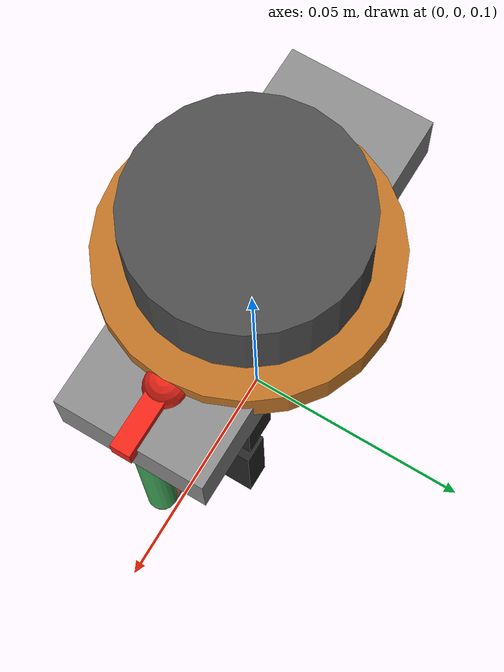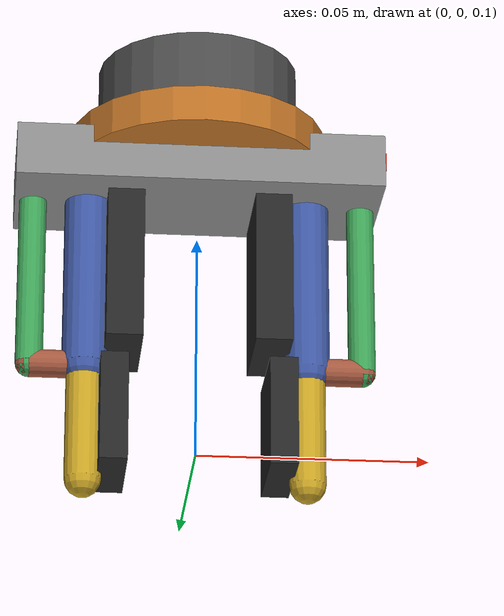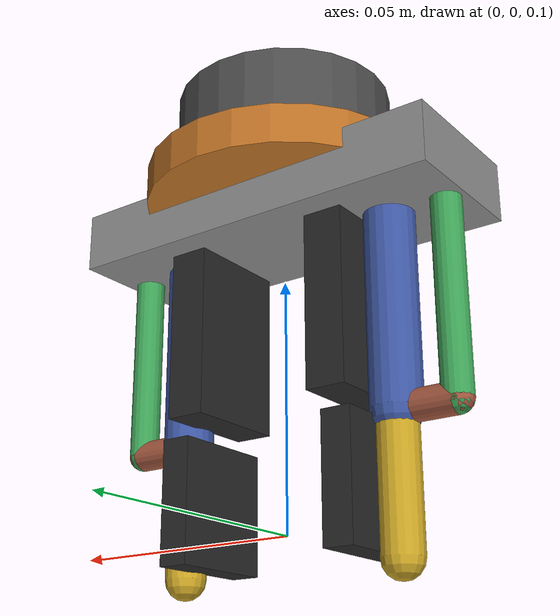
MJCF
<mujoco model="grasp_and_twist_gripper">

  <compiler angle="radian" autolimits="true"/>

  <default>
    <default class="gripper">
      <joint damping="0.5" armature="0.005"/>
      <geom condim="4" friction="0.7 0.005 0.001"/>

      <default class="driver">
        <joint damping="0.8" armature="0.008"/>
        <geom type="capsule" size="0.005" rgba="0.25 0.35 0.65 1"/>
      </default>
      <default class="follower">
        <joint damping="0.4" armature="0.004"/>
        <geom type="capsule" size="0.003" rgba="0.25 0.65 0.35 1"/>
      </default>
      <default class="coupler">
        <joint damping="0.3" armature="0.003"/>
        <geom type="capsule" size="0.003" rgba="0.65 0.35 0.25 1"/>
      </default>
      <default class="distal">
        <joint stiffness="0.6" damping="0.25" armature="0.004"/>
        <geom type="capsule" size="0.004" rgba="0.80 0.65 0.15 1"/>
      </default>
      <default class="pad">
        <geom type="box" condim="4" friction="1.5 0.005 0.001"
              rgba="0.15 0.15 0.15 1" priority="1"
              solimp="0.95 0.99 0.001" solref="0.008 1"/>
      </default>
    </default>
  </default>

  <worldbody>
    <!-- Fixed ceiling mount -->
    <body name="mount" pos="0 0 0.18">
      <geom name="mount_viz" type="cylinder" size="0.022 0.010"
            rgba="0.3 0.3 0.3 1" mass="0.2"/>

      <!-- WRIST: Passive revolute about Z, stiff spring                -->
      <!-- THIS IS PASSIVE DOF #1 — rotates only when fingers stall    -->
      <body name="wrist_body" pos="0 0 -0.010">
        <inertial pos="0 0 -0.005" mass="0.06"
                  diaginertia="6e-6 6e-6 1e-5"/>
        <joint name="wrist_joint" type="hinge" axis="0 0 1"
               range="-6.28 6.28"
               stiffness="5.0" damping="1.5" armature="0.015"/>
        <!-- Wrist disc -->
        <geom name="wrist_disc" type="cylinder" size="0.028 0.004"
              rgba="0.75 0.45 0.15 1" mass="0.02"/>
        <!-- Direction indicator (red arrow) so you can SEE the twist -->
        <geom name="wrist_arrow" type="box" size="0.028 0.002 0.002"
              pos="0.014 0 0" rgba="0.95 0.15 0.10 1"/>
        <geom name="wrist_dot" type="sphere" size="0.004"
              pos="0.028 0 0" rgba="0.95 0.15 0.10 1"/>

        <!-- Gripper base (rides on wrist, rotates with it) -->
        <body name="base_mount" pos="0 0 -0.006">
          <geom name="base" type="box" size="0.040 0.015 0.006"
                rgba="0.55 0.55 0.55 1" mass="0.10"/>

          <!-- ====== RIGHT FINGER ====== -->
          <body name="right_driver" pos="0.024 0 -0.004" childclass="gripper">
            <inertial pos="0 0 -0.019" mass="0.012"
                      diaginertia="1e-6 1e-6 3e-7"/>
            <joint name="right_driver_joint" type="hinge"
                   axis="0 1 0" range="0 0.8" class="driver"/>
            <geom name="right_driver_link"
                  fromto="0 0 0  0 0 -0.040" class="driver"/>
            <geom name="right_prox_pad" class="pad"
                  pos="-0.008 0 -0.020" size="0.004 0.011 0.017"/>

            <!-- Coupler (kinematic only) -->
            <body name="right_coupler" pos="0 0 -0.040">
              <inertial pos="0.005 0 0" mass="0.005"
                        diaginertia="1.5e-7 1.5e-7 6e-8"/>
              <joint name="right_coupler_joint" type="hinge"
                     axis="0 -1 0" range="-1.2 1.2" class="coupler"/>
              <geom name="right_coupler_link"
                    fromto="0 0 0  0.012 0 0" class="coupler"/>
              <site name="right_coupler_end" pos="0.012 0 0" size="0.002"/>
            </body>

            <!-- DISTAL — passive DOF #2 -->
            <body name="right_distal" pos="0 0 -0.040">
              <inertial pos="0 0 -0.012" mass="0.008"
                        diaginertia="3e-7 3e-7 1e-7"/>
              <joint name="right_distal_joint" type="hinge"
                     axis="0 1 0" range="-0.5 1.2" class="distal"/>
              <geom name="right_distal_link"
                    fromto="0 0 0  0 0 -0.026" class="distal"/>
              <geom name="right_dist_pad" class="pad"
                    pos="-0.006 0 -0.013" size="0.003 0.011 0.012"/>
            </body>
          </body>

          <!-- Right follower -->
          <body name="right_follower" pos="0.036 0 -0.004" childclass="gripper">
            <inertial pos="0 0 -0.020" mass="0.006"
                      diaginertia="4e-7 4e-7 1.5e-7"/>
            <joint name="right_follower_joint" type="hinge"
                   axis="0 1 0" range="-0.2 0.8" class="follower"/>
            <geom name="right_follower_link"
                  fromto="0 0 0  0 0 -0.040" class="follower"/>
            <body name="right_follower_tip" pos="0 0 -0.040">
              <site name="right_follower_end" pos="0 0 0" size="0.002"/>
            </body>
          </body>

          <!-- ====== LEFT FINGER ====== -->
          <body name="left_driver" pos="-0.024 0 -0.004" childclass="gripper">
            <inertial pos="0 0 -0.019" mass="0.012"
                      diaginertia="1e-6 1e-6 3e-7"/>
            <joint name="left_driver_joint" type="hinge"
                   axis="0 -1 0" range="0 0.8" class="driver"/>
            <geom name="left_driver_link"
                  fromto="0 0 0  0 0 -0.040" class="driver"/>
            <geom name="left_prox_pad" class="pad"
                  pos="0.008 0 -0.020" size="0.004 0.011 0.017"/>

            <body name="left_coupler" pos="0 0 -0.040">
              <inertial pos="-0.005 0 0" mass="0.005"
                        diaginertia="1.5e-7 1.5e-7 6e-8"/>
              <joint name="left_coupler_joint" type="hinge"
                     axis="0 1 0" range="-1.2 1.2" class="coupler"/>
              <geom name="left_coupler_link"
                    fromto="0 0 0  -0.012 0 0" class="coupler"/>
              <site name="left_coupler_end" pos="-0.012 0 0" size="0.002"/>
            </body>

            <!-- DISTAL — passive DOF #3 -->
            <body name="left_distal" pos="0 0 -0.040">
              <inertial pos="0 0 -0.012" mass="0.008"
                        diaginertia="3e-7 3e-7 1e-7"/>
              <joint name="left_distal_joint" type="hinge"
                     axis="0 -1 0" range="-0.5 1.2" class="distal"/>
              <geom name="left_distal_link"
                    fromto="0 0 0  0 0 -0.026" class="distal"/>
              <geom name="left_dist_pad" class="pad"
                    pos="0.006 0 -0.013" size="0.003 0.011 0.012"/>
            </body>
          </body>

          <!-- Left follower -->
          <body name="left_follower" pos="-0.036 0 -0.004" childclass="gripper">
            <inertial pos="0 0 -0.020" mass="0.006"
                      diaginertia="4e-7 4e-7 1.5e-7"/>
            <joint name="left_follower_joint" type="hinge"
                   axis="0 -1 0" range="-0.2 0.8" class="follower"/>
            <geom name="left_follower_link"
                  fromto="0 0 0  0 0 -0.040" class="follower"/>
            <body name="left_follower_tip" pos="0 0 -0.040">
              <site name="left_follower_end" pos="0 0 0" size="0.002"/>
            </body>
          </body>

        </body> <!-- base_mount -->
      </body> <!-- wrist_body -->
    </body> <!-- mount -->
  </worldbody>

  <!-- Four-bar closures (rigid) -->
  <equality>
    <connect name="right_four_bar"
             body1="right_coupler" body2="right_follower_tip"
             anchor="0.012 0 0" solref="0.002 1"/>
    <connect name="left_four_bar"
             body1="left_coupler" body2="left_follower_tip"
             anchor="-0.012 0 0" solref="0.002 1"/>
  </equality>

  <contact>
    <exclude body1="mount" body2="wrist_body"/>
    <exclude body1="wrist_body" body2="base_mount"/>
    <exclude body1="base_mount" body2="right_driver"/>
    <exclude body1="base_mount" body2="right_follower"/>
    <exclude body1="base_mount" body2="left_driver"/>
    <exclude body1="base_mount" body2="left_follower"/>
    <exclude body1="right_driver" body2="right_follower"/>
    <exclude body1="right_coupler" body2="right_follower"/>
    <exclude body1="right_coupler" body2="right_follower_tip"/>
    <exclude body1="right_distal" body2="right_coupler"/>
    <exclude body1="left_driver" body2="left_follower"/>
    <exclude body1="left_coupler" body2="left_follower"/>
    <exclude body1="left_coupler" body2="left_follower_tip"/>
    <exclude body1="left_distal" body2="left_coupler"/>
    <exclude body1="right_driver" body2="left_driver"/>
    <exclude body1="right_distal" body2="left_distal"/>
  </contact>

  <!-- THE DIFFERENTIAL: Single compound tendon                           -->
  <!-- master = 1.0*right_driver + 1.0*left_driver + 0.25*wrist          -->
  <!-- HOW IT WORKS:                                                      -->
  <!--   Actuator commands tendon length.                                 -->
  <!--   Fingers have NO spring → they move freely (low resistance).      -->
  <!--   Wrist has spring k=5.0 → it resists (high resistance).           -->
  <!--   ctrl 0→0.8: Fingers absorb all motion. Wrist stays at 0.        -->
  <!--     (tendon length = finger_angles, wrist contribution ≈ 0)        -->
  <!--   ctrl 0.8→2.0: Fingers at joint limit (0.8 rad) OR stalled       -->
  <!--     on object. Can't absorb more. Excess goes to wrist.            -->
  <!--     0.25*wrist = ctrl - 1.6 → wrist = 4*(ctrl - 1.6)             -->
  <!--     At ctrl=2.0: wrist = 4*0.4 = 1.6 rad ≈ 92 degrees            -->
  <!-- ONE ACTUATOR. TWO USEFUL MOTIONS. ZERO SENSORS.                    -->
  <tendon>
    <fixed name="master_tendon">
      <joint joint="right_driver_joint" coef="1.0"/>
      <joint joint="left_driver_joint" coef="1.0"/>
      <joint joint="wrist_joint" coef="0.25"/>
    </fixed>
  </tendon>

  <!-- SINGLE ACTUATOR — position-controlled on the compound tendon -->
  <actuator>
    <position name="master_actuator" tendon="master_tendon"
              ctrlrange="0 2.5" kp="80" forcerange="-150 150"/>
  </actuator>

  <!-- Sensors for monitoring all DOFs -->
  <sensor>
    <jointpos   name="wrist_angle"       joint="wrist_joint"/>
    <jointpos   name="right_driver_pos"  joint="right_driver_joint"/>
    <jointpos   name="left_driver_pos"   joint="left_driver_joint"/>
    <jointpos   name="right_distal_pos"  joint="right_distal_joint"/>
    <jointpos   name="left_distal_pos"   joint="left_distal_joint"/>
    <tendonpos  name="master_tendon_pos" tendon="master_tendon"/>
    <actuatorfrc name="master_force"     actuator="master_actuator"/>
  </sensor>

  <!-- Keyframes for interactive testing -->
  <keyframe>
    <key name="open"         ctrl="0"/>
    <key name="fingers_only" ctrl="0.8"/>
    <key name="grasp_twist"  ctrl="2.0"/>
    <key name="full_twist"   ctrl="2.5"/>
  </keyframe>

</mujoco>
